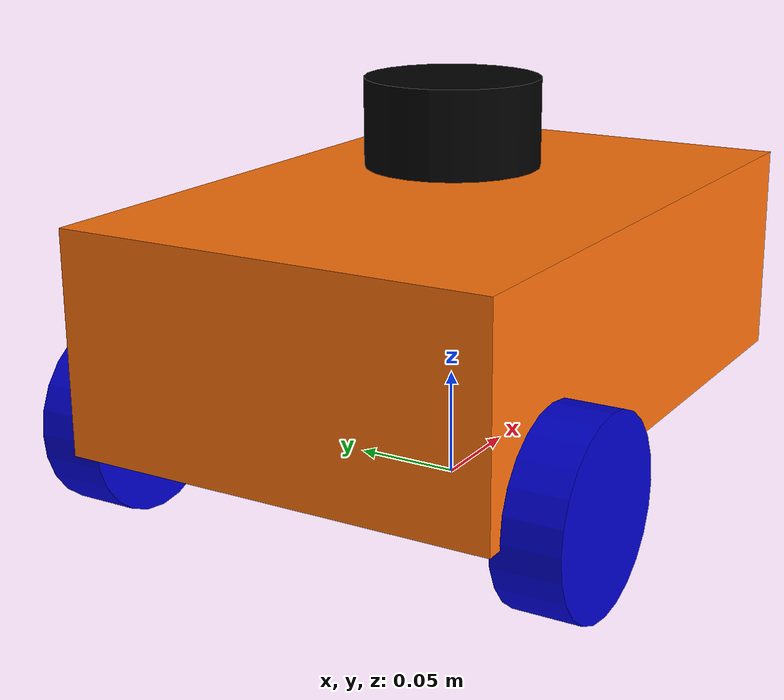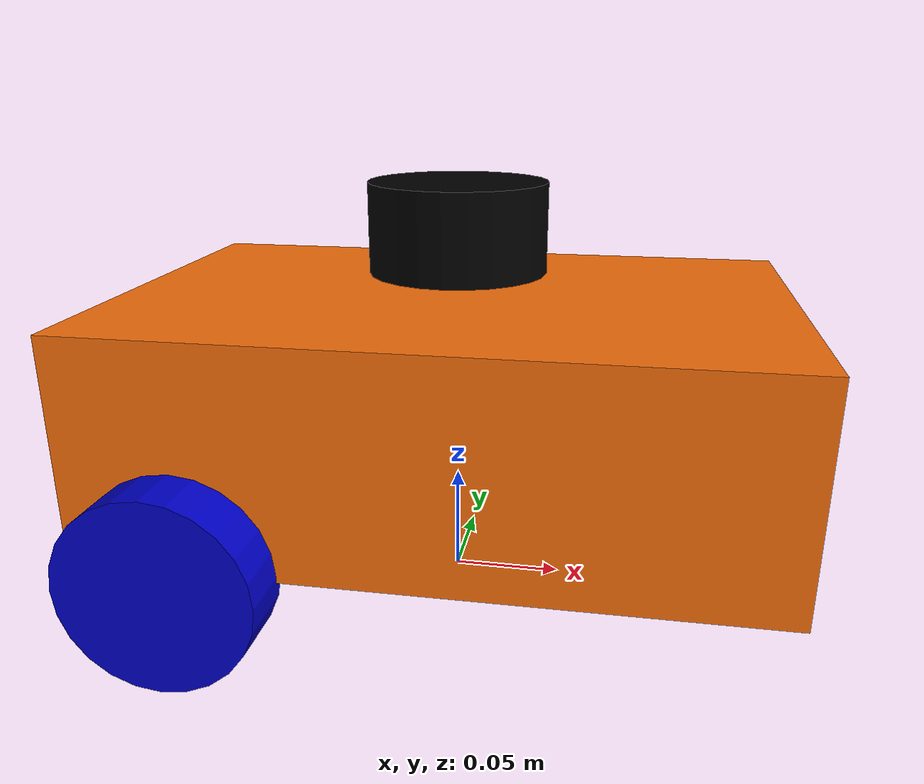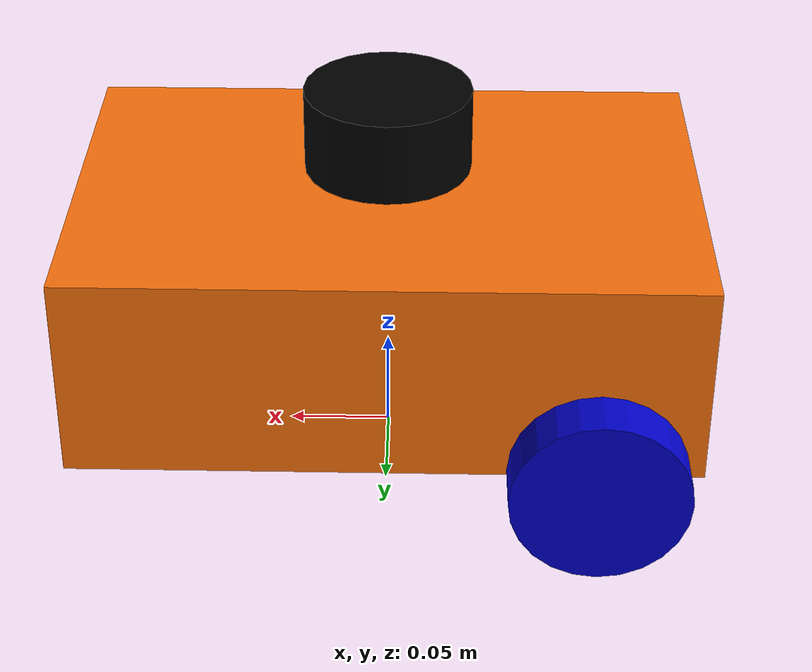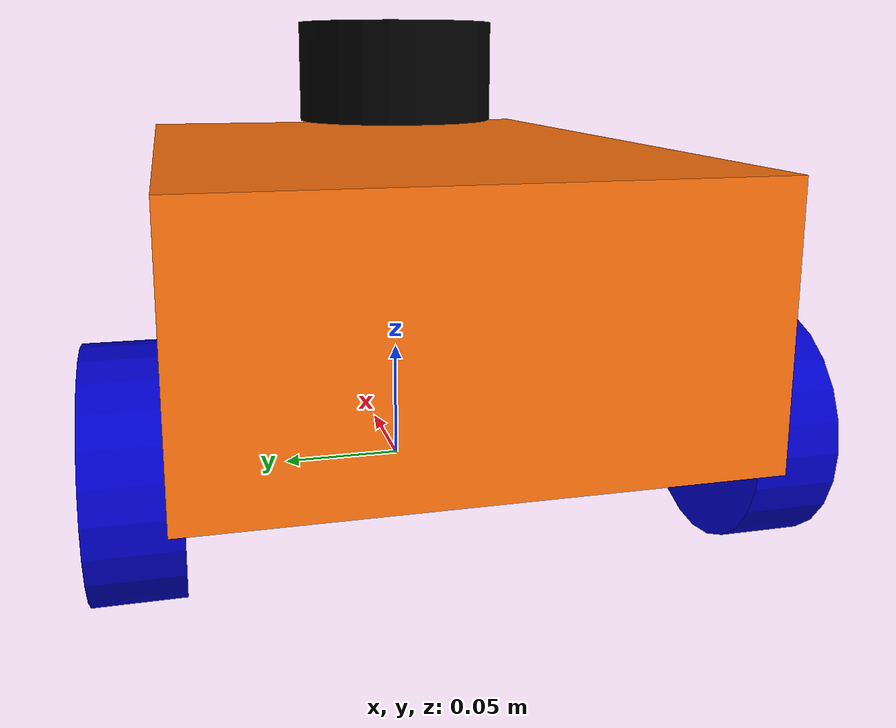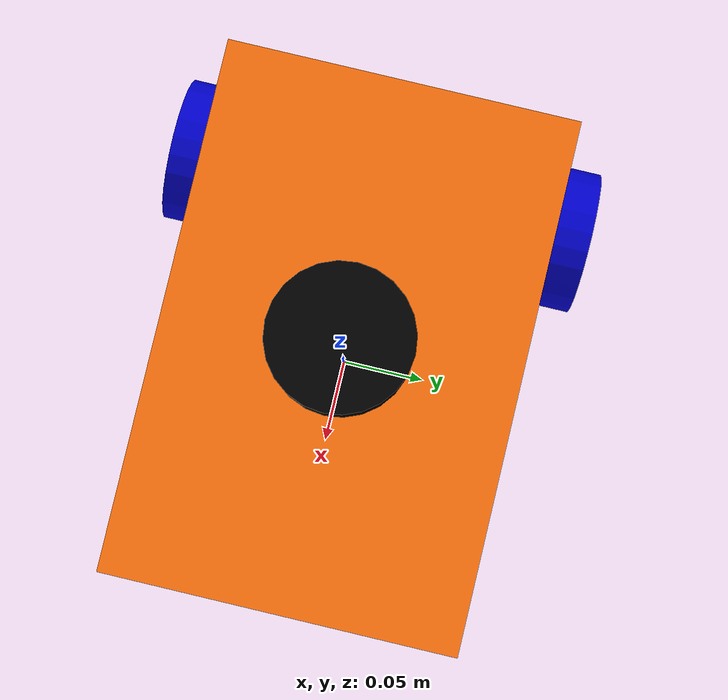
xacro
<?xml version="1.0"?>
<robot name="three_wheel_robot_model" xmlns:xacro="http://www.ros.org/wiki/xacro">

  <!-- PROPERTIES (tweak here if needed) -->
  <xacro:property name="wheel_radius" value="0.0425"/>
  <xacro:property name="wheel_width"  value="0.03"/>
  <xacro:property name="wheel_separation" value="0.22"/>  <!-- distance between left and right wheel centers -->
  <xacro:property name="body_length" value="0.30"/>
  <xacro:property name="body_width"  value="0.20"/>
  <xacro:property name="body_height" value="0.10"/>
  <xacro:property name="base_z" value="0.09"/>

  <!-- MATERIALS -->
  <material name="blue"><color rgba="0 0 0.8 1"/></material>
  <material name="black"><color rgba="0 0 0 1"/></material>
  <material name="orange"><color rgba="1.0 0.45 0.05 1"/></material>
  <material name="white"><color rgba="1 1 1 1"/></material>

  <!-- BASE LINK -->
  <link name="base_link">
    <visual>
      <origin xyz="0 0 ${base_z}"/>
      <geometry>
        <box size="${body_length} ${body_width} ${body_height}"/>
      </geometry>
      <material name="orange"/>
    </visual>

    <collision>
      <origin xyz="0 0 ${base_z}"/>
      <geometry>
        <box size="${body_length} ${body_width} ${body_height}"/>
      </geometry>
    </collision>

    <inertial>
      <!-- Use a reasonable simple inertial (tweak for realistic sim) -->
      <origin xyz="0 0 ${base_z}"/>
      <mass value="3.0"/>
      <inertia ixx="0.03" iyy="0.03" izz="0.03" ixy="0.0" ixz="0.0" iyz="0.0"/>
    </inertial>
  </link>

  <!-- RIGHT WHEEL -->
  <link name="right_wheel">
    <visual>
      <!-- Cylinder oriented so rotation axis is Y (we rotate about Y) -->
      <origin rpy="1.5708 0 0" xyz="0 0 0"/>
      <geometry>
        <cylinder radius="${wheel_radius}" length="${wheel_width}"/>
      </geometry>
      <material name="blue"/>
    </visual>

    <collision>
      <origin rpy="1.5708 0 0" xyz="0 0 0"/>
      <geometry>
        <cylinder radius="${wheel_radius}" length="${wheel_width}"/>
      </geometry>
    </collision>

    <inertial>
      <origin xyz="0 0 0"/>
      <mass value="0.3"/>
      <!-- approximate wheel inertia -->
      <inertia ixx="0.0005" iyy="0.0005" izz="0.0005" ixy="0.0" ixz="0.0" iyz="0.0"/>
    </inertial>
  </link>

  <joint name="body_right_wheel" type="continuous">
    <parent link="base_link"/>
    <child link="right_wheel"/>
    <!-- rear-right wheel: +X is forward, -Y is right in ROS -->
    <origin xyz="-0.10 -0.11 ${wheel_radius}"/>
    <!-- rotation axis: Y (spins to drive +x) -->
    <axis xyz="0 1 0"/>
  </joint>

  <!-- LEFT WHEEL -->
  <link name="left_wheel">
    <visual>
      <origin rpy="1.5708 0 0" xyz="0 0 0"/>
      <geometry>
        <cylinder radius="${wheel_radius}" length="${wheel_width}"/>
      </geometry>
      <material name="blue"/>
    </visual>

    <collision>
      <origin rpy="1.5708 0 0" xyz="0 0 0"/>
      <geometry>
        <cylinder radius="${wheel_radius}" length="${wheel_width}"/>
      </geometry>
    </collision>

    <inertial>
      <origin xyz="0 0 0"/>
      <mass value="0.3"/>
      <inertia ixx="0.0005" iyy="0.0005" izz="0.0005" ixy="0.0" ixz="0.0" iyz="0.0"/>
    </inertial>
  </link>

  <joint name="body_left_wheel" type="continuous">
    <parent link="base_link"/>
    <child link="left_wheel"/>
    <!-- rear-left wheel: +X is forward, +Y is left in ROS -->
    <origin xyz="-0.10 0.11 ${wheel_radius}"/>
    <axis xyz="0 1 0"/>
  </joint>

  <!-- FRONT CASTER SUPPORT (non-driven) -->
  <link name="front_caster_wheel">
    <visual>
      <origin xyz="0 0 0"/>
      <geometry>
        <sphere radius="0.04"/>
      </geometry>
      <material name="blue"/>
    </visual>

    <collision>
      <origin xyz="0 0 0"/>
      <geometry>
        <sphere radius="0.04"/>
      </geometry>
    </collision>

    <inertial>
      <mass value="0.05"/>
      <inertia ixx="1e-4" iyy="1e-4" izz="1e-4" ixy="0" ixz="0" iyz="0"/>
    </inertial>
  </link>
  <gazebo reference="front_caster_wheel">
        <material>Gazebo/Black</material>
        <mu1 value="0.001"/>
        <mu2 value="0.001"/>
  </gazebo>

  <joint name="body_front_caster_wheel" type="fixed">
    <parent link="base_link"/>
    <child link="front_caster_wheel"/>
    <origin xyz="0.10 0 ${wheel_radius}"/>
  </joint>

  <!-- LIDAR -->
  <link name="lidar_link">
    <visual>
      <origin xyz="0 0 0"/>
      <geometry>
        <cylinder radius="0.04" length="0.04"/>
      </geometry>
      <material name="black"/>
    </visual>

    <collision>
      <origin xyz="0 0 0"/>
      <geometry>
        <cylinder radius="0.04" length="0.04"/>
      </geometry>
    </collision>

    <inertial>
      <origin xyz="0 0 0"/>
      <mass value="0.1"/>
      <inertia ixx="0.0001" iyy="0.0001" izz="0.0001" ixy="0" ixz="0" iyz="0"/>
    </inertial>
  </link>

  <joint name="base_to_lidar" type="fixed">
    <parent link="base_link"/>
    <child link="lidar_link"/>
    <origin xyz="0 0 0.17"/>
  </joint>

  <gazebo reference="lidar_link">
    <material>Gazebo/Black</material>
    <sensor name="lidar" type="ray">
      <pose>0 0 0 0 0 0</pose>
      <always_on>true</always_on>
      <visualize>true</visualize>
      <update_rate>10</update_rate>
      <ray>
        <scan>
          <horizontal>
            <samples>360</samples>
            <resolution>1</resolution>
            <min_angle>-3.14159</min_angle>
            <max_angle>3.14159</max_angle>
          </horizontal>
        </scan>
        <range>
          <min>0.12</min>
          <max>8.0</max>
          <resolution>0.01</resolution>
        </range>
        <noise>
          <type>gaussian</type>
          <mean>0.0</mean>
          <stddev>0.01</stddev>
        </noise>
      </ray>
      <plugin name="lidar_controller" filename="libgazebo_ros_ray_sensor.so">
        <ros>
          <namespace>/</namespace>
          <remapping>~/out:=/scan</remapping>
        </ros>
        <output_type>sensor_msgs/LaserScan</output_type>
        <frame_name>lidar_link</frame_name>
      </plugin>
    </sensor>
  </gazebo>

  <!-- Optional: simple placeholder collision geometry for wheels if needed -->
  <!-- (Already done above by using cylinder collision) -->

  <!--
       GAZEBO PLUGINS (for ROS2 integration)
 -->

  <!-- Differential-drive plugin: listens to /cmd_vel and actuates left/right joints -->
  <gazebo>
    <plugin name="gazebo_diff_drive" filename="libgazebo_ros_diff_drive.so">
      <ros>
        <namespace>/</namespace>
        <!-- ensure this matches where you will publish teleop cmd_vel -->
        <remapping>cmd_vel:=/cmd_vel</remapping>
      </ros>

      <!-- wheel information -->
      <left_joint>body_left_wheel</left_joint>
      <right_joint>body_right_wheel</right_joint>
      <wheel_separation>${wheel_separation}</wheel_separation>
      <wheel_diameter>${2 * wheel_radius}</wheel_diameter>

      <!-- limits-->
      <max_wheel_torque>5.0</max_wheel_torque>
      <max_wheel_acceleration>10.0</max_wheel_acceleration>

      <!--output-->
      <odometry_frame>odom</odometry_frame>
      <robot_base_frame>base_link</robot_base_frame>
      <publish_odometry>true</publish_odometry>
      <publish_wheel_tf>true</publish_wheel_tf> <!-- wheel->base_link TF -->
      <publish_odom_tf>true</publish_odom_tf>   <!-- odom->base_link TF -->

    </plugin>
  </gazebo>

</robot>
